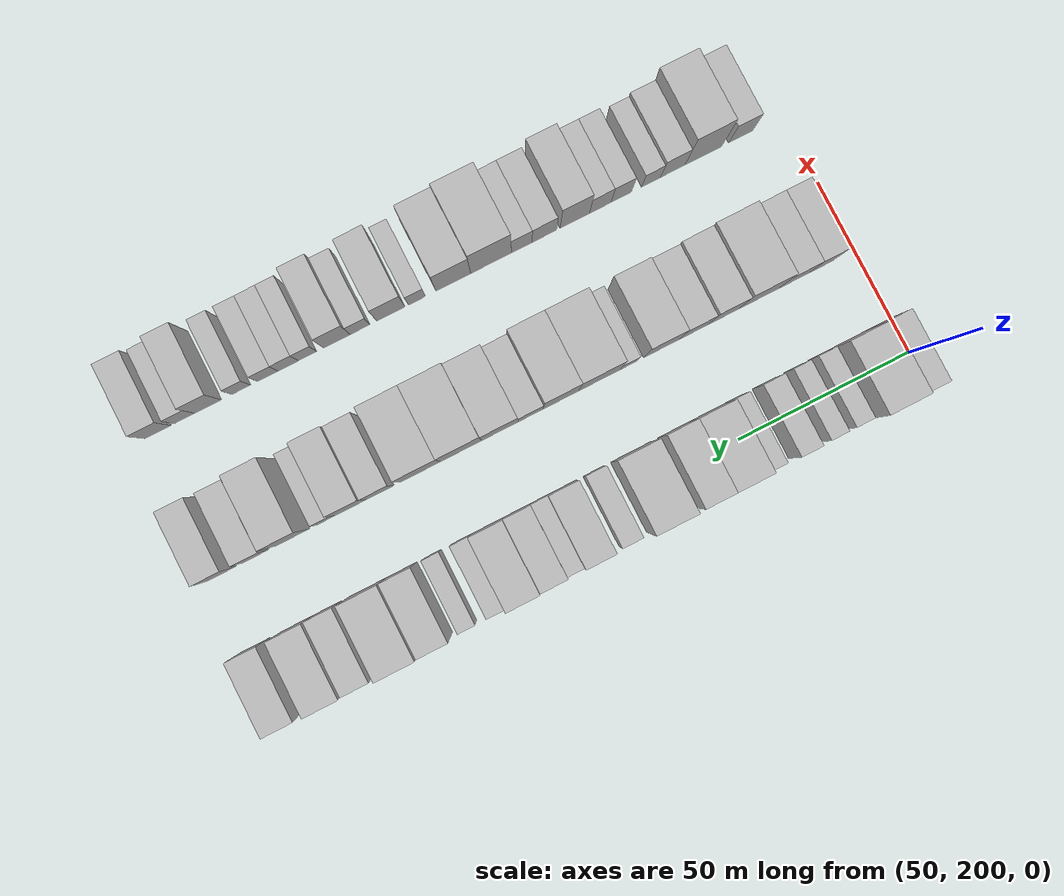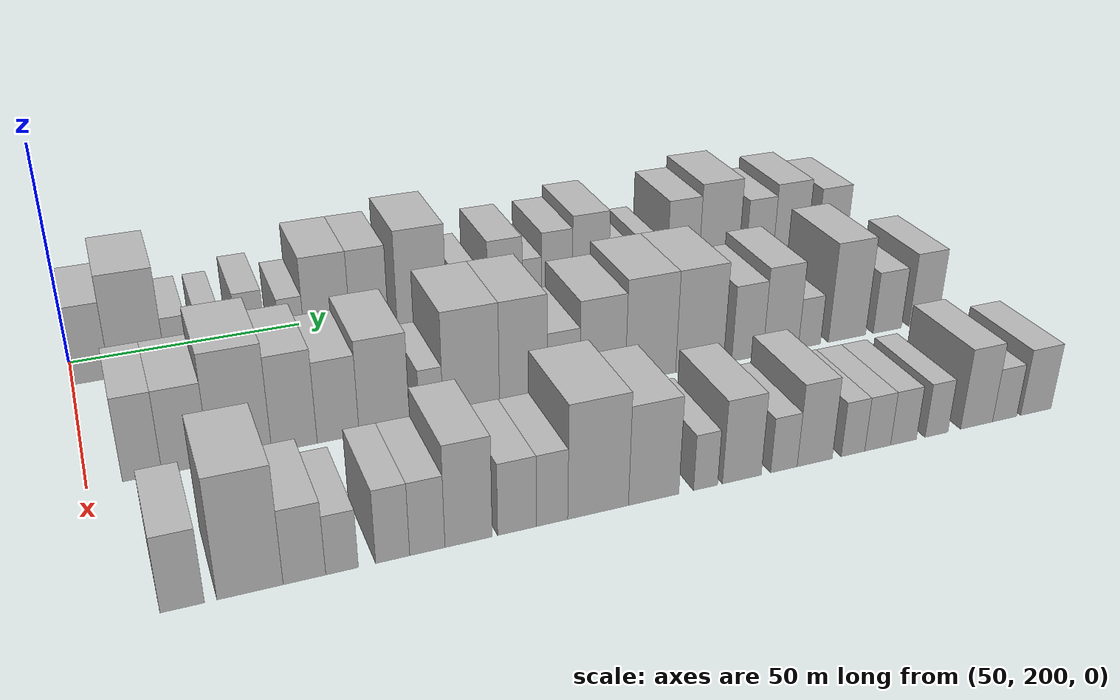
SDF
<sdf version="1.6">
 <world name="default">
  <model name="building_67">
   <static>1</static>
   <pose>50.0000 203.9074 0 0.000000 0.000000 0.000000</pose>
   <link name="link">
    <pose>0 0 9.00 0 0 0</pose>
    <collision name="collision"><geometry><box><size>20.0000 7.4606 18.0000</size></box></geometry></collision>
    <visual name="visual">
     <cast_shadows>0</cast_shadows>
     <geometry><box><size>20.0000 7.4606 18.0000</size></box></geometry>
     <material>
      <script>
       <uri>model://HANNAS_wall/materials/scripts</uri>
       <uri>model://HANNAS_wall/materials/textures</uri>
       <name>vrc/HANNAS_wall</name>
      </script>
     </material>
    </visual>
   </link>
  </model>
  <model name="building_68">
   <static>1</static>
   <pose>50.0000 213.4400 0 0.000000 0.000000 0.000000</pose>
   <link name="link">
    <pose>0 0 12.00 0 0 0</pose>
    <collision name="collision"><geometry><box><size>20.0000 11.6046 24.0000</size></box></geometry></collision>
    <visual name="visual">
     <cast_shadows>0</cast_shadows>
     <geometry><box><size>20.0000 11.6046 24.0000</size></box></geometry>
     <material>
      <script>
       <uri>model://HANNAS_wall/materials/scripts</uri>
       <uri>model://HANNAS_wall/materials/textures</uri>
       <name>vrc/HANNAS_wall</name>
      </script>
     </material>
    </visual>
   </link>
  </model>
  <model name="building_69">
   <static>1</static>
   <pose>50.0000 221.8790 0 0.000000 0.000000 0.000000</pose>
   <link name="link">
    <pose>0 0 6.00 0 0 0</pose>
    <collision name="collision"><geometry><box><size>20.0000 5.2733 12.0000</size></box></geometry></collision>
    <visual name="visual">
     <cast_shadows>0</cast_shadows>
     <geometry><box><size>20.0000 5.2733 12.0000</size></box></geometry>
     <material>
      <script>
       <uri>model://HANNAS_wall/materials/scripts</uri>
       <uri>model://HANNAS_wall/materials/textures</uri>
       <name>vrc/HANNAS_wall</name>
      </script>
     </material>
    </visual>
   </link>
  </model>
  <model name="building_70">
   <static>1</static>
   <pose>50.0000 229.0565 0 0.000000 0.000000 0.000000</pose>
   <link name="link">
    <pose>0 0 6.00 0 0 0</pose>
    <collision name="collision"><geometry><box><size>20.0000 5.0818 12.0000</size></box></geometry></collision>
    <visual name="visual">
     <cast_shadows>0</cast_shadows>
     <geometry><box><size>20.0000 5.0818 12.0000</size></box></geometry>
     <material>
      <script>
       <uri>model://HANNAS_wall/materials/scripts</uri>
       <uri>model://HANNAS_wall/materials/textures</uri>
       <name>vrc/HANNAS_wall</name>
      </script>
     </material>
    </visual>
   </link>
  </model>
  <model name="building_71">
   <static>1</static>
   <pose>50.0000 237.6890 0 0.000000 0.000000 0.000000</pose>
   <link name="link">
    <pose>0 0 7.50 0 0 0</pose>
    <collision name="collision"><geometry><box><size>20.0000 6.1831 15.0000</size></box></geometry></collision>
    <visual name="visual">
     <cast_shadows>0</cast_shadows>
     <geometry><box><size>20.0000 6.1831 15.0000</size></box></geometry>
     <material>
      <script>
       <uri>model://HANNAS_wall/materials/scripts</uri>
       <uri>model://HANNAS_wall/materials/textures</uri>
       <name>vrc/HANNAS_wall</name>
      </script>
     </material>
    </visual>
   </link>
  </model>
  <model name="building_72">
   <static>1</static>
   <pose>50.0000 246.5263 0 0.000000 0.000000 0.000000</pose>
   <link name="link">
    <pose>0 0 6.00 0 0 0</pose>
    <collision name="collision"><geometry><box><size>20.0000 5.4916 12.0000</size></box></geometry></collision>
    <visual name="visual">
     <cast_shadows>0</cast_shadows>
     <geometry><box><size>20.0000 5.4916 12.0000</size></box></geometry>
     <material>
      <script>
       <uri>model://HANNAS_wall/materials/scripts</uri>
       <uri>model://HANNAS_wall/materials/textures</uri>
       <name>vrc/HANNAS_wall</name>
      </script>
     </material>
    </visual>
   </link>
  </model>
  <model name="building_73">
   <static>1</static>
   <pose>50.0000 254.4326 0 0.000000 0.000000 0.000000</pose>
   <link name="link">
    <pose>0 0 10.50 0 0 0</pose>
    <collision name="collision"><geometry><box><size>20.0000 10.3210 21.0000</size></box></geometry></collision>
    <visual name="visual">
     <cast_shadows>0</cast_shadows>
     <geometry><box><size>20.0000 10.3210 21.0000</size></box></geometry>
     <material>
      <script>
       <uri>model://HANNAS_wall/materials/scripts</uri>
       <uri>model://HANNAS_wall/materials/textures</uri>
       <name>vrc/HANNAS_wall</name>
      </script>
     </material>
    </visual>
   </link>
  </model>
  <model name="building_74">
   <static>1</static>
   <pose>50.0000 263.9649 0 0.000000 0.000000 0.000000</pose>
   <link name="link">
    <pose>0 0 10.50 0 0 0</pose>
    <collision name="collision"><geometry><box><size>20.0000 8.7438 21.0000</size></box></geometry></collision>
    <visual name="visual">
     <cast_shadows>0</cast_shadows>
     <geometry><box><size>20.0000 8.7438 21.0000</size></box></geometry>
     <material>
      <script>
       <uri>model://HANNAS_wall/materials/scripts</uri>
       <uri>model://HANNAS_wall/materials/textures</uri>
       <name>vrc/HANNAS_wall</name>
      </script>
     </material>
    </visual>
   </link>
  </model>
  <model name="building_75">
   <static>1</static>
   <pose>50.0000 276.1647 0 0.000000 0.000000 0.000000</pose>
   <link name="link">
    <pose>0 0 12.00 0 0 0</pose>
    <collision name="collision"><geometry><box><size>20.0000 11.6556 24.0000</size></box></geometry></collision>
    <visual name="visual">
     <cast_shadows>0</cast_shadows>
     <geometry><box><size>20.0000 11.6556 24.0000</size></box></geometry>
     <material>
      <script>
       <uri>model://HANNAS_wall/materials/scripts</uri>
       <uri>model://HANNAS_wall/materials/textures</uri>
       <name>vrc/HANNAS_wall</name>
      </script>
     </material>
    </visual>
   </link>
  </model>
  <model name="building_76">
   <static>1</static>
   <pose>50.0000 286.9601 0 0.000000 0.000000 0.000000</pose>
   <link name="link">
    <pose>0 0 6.00 0 0 0</pose>
    <collision name="collision"><geometry><box><size>20.0000 5.9353 12.0000</size></box></geometry></collision>
    <visual name="visual">
     <cast_shadows>0</cast_shadows>
     <geometry><box><size>20.0000 5.9353 12.0000</size></box></geometry>
     <material>
      <script>
       <uri>model://HANNAS_wall/materials/scripts</uri>
       <uri>model://HANNAS_wall/materials/textures</uri>
       <name>vrc/HANNAS_wall</name>
      </script>
     </material>
    </visual>
   </link>
  </model>
  <model name="building_77">
   <static>1</static>
   <pose>50.0000 296.1823 0 0.000000 0.000000 0.000000</pose>
   <link name="link">
    <pose>0 0 9.00 0 0 0</pose>
    <collision name="collision"><geometry><box><size>20.0000 8.5092 18.0000</size></box></geometry></collision>
    <visual name="visual">
     <cast_shadows>0</cast_shadows>
     <geometry><box><size>20.0000 8.5092 18.0000</size></box></geometry>
     <material>
      <script>
       <uri>model://HANNAS_wall/materials/scripts</uri>
       <uri>model://HANNAS_wall/materials/textures</uri>
       <name>vrc/HANNAS_wall</name>
      </script>
     </material>
    </visual>
   </link>
  </model>
  <model name="building_78">
   <static>1</static>
   <pose>50.0000 302.8393 0 0.000000 0.000000 0.000000</pose>
   <link name="link">
    <pose>0 0 6.00 0 0 0</pose>
    <collision name="collision"><geometry><box><size>20.0000 4.8047 12.0000</size></box></geometry></collision>
    <visual name="visual">
     <cast_shadows>0</cast_shadows>
     <geometry><box><size>20.0000 4.8047 12.0000</size></box></geometry>
     <material>
      <script>
       <uri>model://HANNAS_wall/materials/scripts</uri>
       <uri>model://HANNAS_wall/materials/textures</uri>
       <name>vrc/HANNAS_wall</name>
      </script>
     </material>
    </visual>
   </link>
  </model>
  <model name="building_79">
   <static>1</static>
   <pose>50.0000 309.0741 0 0.000000 0.000000 0.000000</pose>
   <link name="link">
    <pose>0 0 9.00 0 0 0</pose>
    <collision name="collision"><geometry><box><size>20.0000 7.6651 18.0000</size></box></geometry></collision>
    <visual name="visual">
     <cast_shadows>0</cast_shadows>
     <geometry><box><size>20.0000 7.6651 18.0000</size></box></geometry>
     <material>
      <script>
       <uri>model://HANNAS_wall/materials/scripts</uri>
       <uri>model://HANNAS_wall/materials/textures</uri>
       <name>vrc/HANNAS_wall</name>
      </script>
     </material>
    </visual>
   </link>
  </model>
  <model name="building_80">
   <static>1</static>
   <pose>50.0000 317.5751 0 0.000000 0.000000 0.000000</pose>
   <link name="link">
    <pose>0 0 10.50 0 0 0</pose>
    <collision name="collision"><geometry><box><size>20.0000 9.3370 21.0000</size></box></geometry></collision>
    <visual name="visual">
     <cast_shadows>0</cast_shadows>
     <geometry><box><size>20.0000 9.3370 21.0000</size></box></geometry>
     <material>
      <script>
       <uri>model://HANNAS_wall/materials/scripts</uri>
       <uri>model://HANNAS_wall/materials/textures</uri>
       <name>vrc/HANNAS_wall</name>
      </script>
     </material>
    </visual>
   </link>
  </model>
  <model name="building_81">
   <static>1</static>
   <pose>50.0000 324.9460 0 0.000000 0.000000 0.000000</pose>
   <link name="link">
    <pose>0 0 6.00 0 0 0</pose>
    <collision name="collision"><geometry><box><size>20.0000 5.4047 12.0000</size></box></geometry></collision>
    <visual name="visual">
     <cast_shadows>0</cast_shadows>
     <geometry><box><size>20.0000 5.4047 12.0000</size></box></geometry>
     <material>
      <script>
       <uri>model://HANNAS_wall/materials/scripts</uri>
       <uri>model://HANNAS_wall/materials/textures</uri>
       <name>vrc/HANNAS_wall</name>
      </script>
     </material>
    </visual>
   </link>
  </model>
  <model name="building_82">
   <static>1</static>
   <pose>50.0000 333.0898 0 0.000000 0.000000 0.000000</pose>
   <link name="link">
    <pose>0 0 6.00 0 0 0</pose>
    <collision name="collision"><geometry><box><size>20.0000 4.8829 12.0000</size></box></geometry></collision>
    <visual name="visual">
     <cast_shadows>0</cast_shadows>
     <geometry><box><size>20.0000 4.8829 12.0000</size></box></geometry>
     <material>
      <script>
       <uri>model://HANNAS_wall/materials/scripts</uri>
       <uri>model://HANNAS_wall/materials/textures</uri>
       <name>vrc/HANNAS_wall</name>
      </script>
     </material>
    </visual>
   </link>
  </model>
  <model name="building_83">
   <static>1</static>
   <pose>50.0000 341.8164 0 0.000000 0.000000 0.000000</pose>
   <link name="link">
    <pose>0 0 10.50 0 0 0</pose>
    <collision name="collision"><geometry><box><size>20.0000 8.5703 21.0000</size></box></geometry></collision>
    <visual name="visual">
     <cast_shadows>0</cast_shadows>
     <geometry><box><size>20.0000 8.5703 21.0000</size></box></geometry>
     <material>
      <script>
       <uri>model://HANNAS_wall/materials/scripts</uri>
       <uri>model://HANNAS_wall/materials/textures</uri>
       <name>vrc/HANNAS_wall</name>
      </script>
     </material>
    </visual>
   </link>
  </model>
  <model name="building_84">
   <static>1</static>
   <pose>50.0000 351.5468 0 0.000000 0.000000 0.000000</pose>
   <link name="link">
    <pose>0 0 12.00 0 0 0</pose>
    <collision name="collision"><geometry><box><size>20.0000 10.8905 24.0000</size></box></geometry></collision>
    <visual name="visual">
     <cast_shadows>0</cast_shadows>
     <geometry><box><size>20.0000 10.8905 24.0000</size></box></geometry>
     <material>
      <script>
       <uri>model://HANNAS_wall/materials/scripts</uri>
       <uri>model://HANNAS_wall/materials/textures</uri>
       <name>vrc/HANNAS_wall</name>
      </script>
     </material>
    </visual>
   </link>
  </model>
  <model name="building_85">
   <static>1</static>
   <pose>50.0000 362.8300 0 0.000000 0.000000 0.000000</pose>
   <link name="link">
    <pose>0 0 9.00 0 0 0</pose>
    <collision name="collision"><geometry><box><size>20.0000 7.6759 18.0000</size></box></geometry></collision>
    <visual name="visual">
     <cast_shadows>0</cast_shadows>
     <geometry><box><size>20.0000 7.6759 18.0000</size></box></geometry>
     <material>
      <script>
       <uri>model://HANNAS_wall/materials/scripts</uri>
       <uri>model://HANNAS_wall/materials/textures</uri>
       <name>vrc/HANNAS_wall</name>
      </script>
     </material>
    </visual>
   </link>
  </model>
  <model name="building_86">
   <static>1</static>
   <pose>50.0000 371.4643 0 0.000000 0.000000 0.000000</pose>
   <link name="link">
    <pose>0 0 10.50 0 0 0</pose>
    <collision name="collision"><geometry><box><size>20.0000 9.5929 21.0000</size></box></geometry></collision>
    <visual name="visual">
     <cast_shadows>0</cast_shadows>
     <geometry><box><size>20.0000 9.5929 21.0000</size></box></geometry>
     <material>
      <script>
       <uri>model://HANNAS_wall/materials/scripts</uri>
       <uri>model://HANNAS_wall/materials/textures</uri>
       <name>vrc/HANNAS_wall</name>
      </script>
     </material>
    </visual>
   </link>
  </model>
  <model name="building_87">
   <static>1</static>
   <pose>50.0000 383.5423 0 0.000000 0.000000 0.000000</pose>
   <link name="link">
    <pose>0 0 9.00 0 0 0</pose>
    <collision name="collision"><geometry><box><size>20.0000 8.5631 18.0000</size></box></geometry></collision>
    <visual name="visual">
     <cast_shadows>0</cast_shadows>
     <geometry><box><size>20.0000 8.5631 18.0000</size></box></geometry>
     <material>
      <script>
       <uri>model://HANNAS_wall/materials/scripts</uri>
       <uri>model://HANNAS_wall/materials/textures</uri>
       <name>vrc/HANNAS_wall</name>
      </script>
     </material>
    </visual>
   </link>
  </model>
  <model name="building_145">
   <static>1</static>
   <pose>90.0000 210.1592 0 0.000000 0.000000 0.000000</pose>
   <link name="link">
    <pose>0 0 9.00 0 0 0</pose>
    <collision name="collision"><geometry><box><size>20.0000 7.2227 18.0000</size></box></geometry></collision>
    <visual name="visual">
     <cast_shadows>0</cast_shadows>
     <geometry><box><size>20.0000 7.2227 18.0000</size></box></geometry>
     <material>
      <script>
       <uri>model://HANNAS_wall/materials/scripts</uri>
       <uri>model://HANNAS_wall/materials/textures</uri>
       <name>vrc/HANNAS_wall</name>
      </script>
     </material>
    </visual>
   </link>
  </model>
  <model name="building_146">
   <static>1</static>
   <pose>90.0000 218.2079 0 0.000000 0.000000 0.000000</pose>
   <link name="link">
    <pose>0 0 9.00 0 0 0</pose>
    <collision name="collision"><geometry><box><size>20.0000 8.8747 18.0000</size></box></geometry></collision>
    <visual name="visual">
     <cast_shadows>0</cast_shadows>
     <geometry><box><size>20.0000 8.8747 18.0000</size></box></geometry>
     <material>
      <script>
       <uri>model://HANNAS_wall/materials/scripts</uri>
       <uri>model://HANNAS_wall/materials/textures</uri>
       <name>vrc/HANNAS_wall</name>
      </script>
     </material>
    </visual>
   </link>
  </model>
  <model name="building_147">
   <static>1</static>
   <pose>90.0000 228.5330 0 0.000000 0.000000 0.000000</pose>
   <link name="link">
    <pose>0 0 12.00 0 0 0</pose>
    <collision name="collision"><geometry><box><size>20.0000 11.7755 24.0000</size></box></geometry></collision>
    <visual name="visual">
     <cast_shadows>0</cast_shadows>
     <geometry><box><size>20.0000 11.7755 24.0000</size></box></geometry>
     <material>
      <script>
       <uri>model://HANNAS_wall/materials/scripts</uri>
       <uri>model://HANNAS_wall/materials/textures</uri>
       <name>vrc/HANNAS_wall</name>
      </script>
     </material>
    </visual>
   </link>
  </model>
  <model name="building_148">
   <static>1</static>
   <pose>90.0000 238.8529 0 0.000000 0.000000 0.000000</pose>
   <link name="link">
    <pose>0 0 10.50 0 0 0</pose>
    <collision name="collision"><geometry><box><size>20.0000 8.8641 21.0000</size></box></geometry></collision>
    <visual name="visual">
     <cast_shadows>0</cast_shadows>
     <geometry><box><size>20.0000 8.8641 21.0000</size></box></geometry>
     <material>
      <script>
       <uri>model://HANNAS_wall/materials/scripts</uri>
       <uri>model://HANNAS_wall/materials/textures</uri>
       <name>vrc/HANNAS_wall</name>
      </script>
     </material>
    </visual>
   </link>
  </model>
  <model name="building_149">
   <static>1</static>
   <pose>90.0000 247.4682 0 0.000000 0.000000 0.000000</pose>
   <link name="link">
    <pose>0 0 9.00 0 0 0</pose>
    <collision name="collision"><geometry><box><size>20.0000 8.3666 18.0000</size></box></geometry></collision>
    <visual name="visual">
     <cast_shadows>0</cast_shadows>
     <geometry><box><size>20.0000 8.3666 18.0000</size></box></geometry>
     <material>
      <script>
       <uri>model://HANNAS_wall/materials/scripts</uri>
       <uri>model://HANNAS_wall/materials/textures</uri>
       <name>vrc/HANNAS_wall</name>
      </script>
     </material>
    </visual>
   </link>
  </model>
  <model name="building_150">
   <static>1</static>
   <pose>90.0000 256.7922 0 0.000000 0.000000 0.000000</pose>
   <link name="link">
    <pose>0 0 10.50 0 0 0</pose>
    <collision name="collision"><geometry><box><size>20.0000 10.2814 21.0000</size></box></geometry></collision>
    <visual name="visual">
     <cast_shadows>0</cast_shadows>
     <geometry><box><size>20.0000 10.2814 21.0000</size></box></geometry>
     <material>
      <script>
       <uri>model://HANNAS_wall/materials/scripts</uri>
       <uri>model://HANNAS_wall/materials/textures</uri>
       <name>vrc/HANNAS_wall</name>
      </script>
     </material>
    </visual>
   </link>
  </model>
  <model name="building_151">
   <static>1</static>
   <pose>90.0000 266.4143 0 0.000000 0.000000 0.000000</pose>
   <link name="link">
    <pose>0 0 6.00 0 0 0</pose>
    <collision name="collision"><geometry><box><size>20.0000 4.9627 12.0000</size></box></geometry></collision>
    <visual name="visual">
     <cast_shadows>0</cast_shadows>
     <geometry><box><size>20.0000 4.9627 12.0000</size></box></geometry>
     <material>
      <script>
       <uri>model://HANNAS_wall/materials/scripts</uri>
       <uri>model://HANNAS_wall/materials/textures</uri>
       <name>vrc/HANNAS_wall</name>
      </script>
     </material>
    </visual>
   </link>
  </model>
  <model name="building_152">
   <static>1</static>
   <pose>90.0000 274.8888 0 0.000000 0.000000 0.000000</pose>
   <link name="link">
    <pose>0 0 12.00 0 0 0</pose>
    <collision name="collision"><geometry><box><size>20.0000 11.9864 24.0000</size></box></geometry></collision>
    <visual name="visual">
     <cast_shadows>0</cast_shadows>
     <geometry><box><size>20.0000 11.9864 24.0000</size></box></geometry>
     <material>
      <script>
       <uri>model://HANNAS_wall/materials/scripts</uri>
       <uri>model://HANNAS_wall/materials/textures</uri>
       <name>vrc/HANNAS_wall</name>
      </script>
     </material>
    </visual>
   </link>
  </model>
  <model name="building_153">
   <static>1</static>
   <pose>90.0000 286.0434 0 0.000000 0.000000 0.000000</pose>
   <link name="link">
    <pose>0 0 12.00 0 0 0</pose>
    <collision name="collision"><geometry><box><size>20.0000 10.3229 24.0000</size></box></geometry></collision>
    <visual name="visual">
     <cast_shadows>0</cast_shadows>
     <geometry><box><size>20.0000 10.3229 24.0000</size></box></geometry>
     <material>
      <script>
       <uri>model://HANNAS_wall/materials/scripts</uri>
       <uri>model://HANNAS_wall/materials/textures</uri>
       <name>vrc/HANNAS_wall</name>
      </script>
     </material>
    </visual>
   </link>
  </model>
  <model name="building_154">
   <static>1</static>
   <pose>90.0000 294.8278 0 0.000000 0.000000 0.000000</pose>
   <link name="link">
    <pose>0 0 7.50 0 0 0</pose>
    <collision name="collision"><geometry><box><size>20.0000 7.2458 15.0000</size></box></geometry></collision>
    <visual name="visual">
     <cast_shadows>0</cast_shadows>
     <geometry><box><size>20.0000 7.2458 15.0000</size></box></geometry>
     <material>
      <script>
       <uri>model://HANNAS_wall/materials/scripts</uri>
       <uri>model://HANNAS_wall/materials/textures</uri>
       <name>vrc/HANNAS_wall</name>
      </script>
     </material>
    </visual>
   </link>
  </model>
  <model name="building_155">
   <static>1</static>
   <pose>90.0000 303.6382 0 0.000000 0.000000 0.000000</pose>
   <link name="link">
    <pose>0 0 10.50 0 0 0</pose>
    <collision name="collision"><geometry><box><size>20.0000 10.3751 21.0000</size></box></geometry></collision>
    <visual name="visual">
     <cast_shadows>0</cast_shadows>
     <geometry><box><size>20.0000 10.3751 21.0000</size></box></geometry>
     <material>
      <script>
       <uri>model://HANNAS_wall/materials/scripts</uri>
       <uri>model://HANNAS_wall/materials/textures</uri>
       <name>vrc/HANNAS_wall</name>
      </script>
     </material>
    </visual>
   </link>
  </model>
  <model name="building_156">
   <static>1</static>
   <pose>90.0000 314.6984 0 0.000000 0.000000 0.000000</pose>
   <link name="link">
    <pose>0 0 12.00 0 0 0</pose>
    <collision name="collision"><geometry><box><size>20.0000 11.7453 24.0000</size></box></geometry></collision>
    <visual name="visual">
     <cast_shadows>0</cast_shadows>
     <geometry><box><size>20.0000 11.7453 24.0000</size></box></geometry>
     <material>
      <script>
       <uri>model://HANNAS_wall/materials/scripts</uri>
       <uri>model://HANNAS_wall/materials/textures</uri>
       <name>vrc/HANNAS_wall</name>
      </script>
     </material>
    </visual>
   </link>
  </model>
  <model name="building_157">
   <static>1</static>
   <pose>90.0000 326.2938 0 0.000000 0.000000 0.000000</pose>
   <link name="link">
    <pose>0 0 12.00 0 0 0</pose>
    <collision name="collision"><geometry><box><size>20.0000 11.4455 24.0000</size></box></geometry></collision>
    <visual name="visual">
     <cast_shadows>0</cast_shadows>
     <geometry><box><size>20.0000 11.4455 24.0000</size></box></geometry>
     <material>
      <script>
       <uri>model://HANNAS_wall/materials/scripts</uri>
       <uri>model://HANNAS_wall/materials/textures</uri>
       <name>vrc/HANNAS_wall</name>
      </script>
     </material>
    </visual>
   </link>
  </model>
  <model name="building_158">
   <static>1</static>
   <pose>90.0000 337.8491 0 0.000000 0.000000 0.000000</pose>
   <link name="link">
    <pose>0 0 9.00 0 0 0</pose>
    <collision name="collision"><geometry><box><size>20.0000 7.6651 18.0000</size></box></geometry></collision>
    <visual name="visual">
     <cast_shadows>0</cast_shadows>
     <geometry><box><size>20.0000 7.6651 18.0000</size></box></geometry>
     <material>
      <script>
       <uri>model://HANNAS_wall/materials/scripts</uri>
       <uri>model://HANNAS_wall/materials/textures</uri>
       <name>vrc/HANNAS_wall</name>
      </script>
     </material>
    </visual>
   </link>
  </model>
  <model name="building_159">
   <static>1</static>
   <pose>90.0000 346.0891 0 0.000000 0.000000 0.000000</pose>
   <link name="link">
    <pose>0 0 10.50 0 0 0</pose>
    <collision name="collision"><geometry><box><size>20.0000 8.8147 21.0000</size></box></geometry></collision>
    <visual name="visual">
     <cast_shadows>0</cast_shadows>
     <geometry><box><size>20.0000 8.8147 21.0000</size></box></geometry>
     <material>
      <script>
       <uri>model://HANNAS_wall/materials/scripts</uri>
       <uri>model://HANNAS_wall/materials/textures</uri>
       <name>vrc/HANNAS_wall</name>
      </script>
     </material>
    </visual>
   </link>
  </model>
  <model name="building_160">
   <static>1</static>
   <pose>90.0000 353.2990 0 0.000000 0.000000 0.000000</pose>
   <link name="link">
    <pose>0 0 6.00 0 0 0</pose>
    <collision name="collision"><geometry><box><size>20.0000 5.6052 12.0000</size></box></geometry></collision>
    <visual name="visual">
     <cast_shadows>0</cast_shadows>
     <geometry><box><size>20.0000 5.6052 12.0000</size></box></geometry>
     <material>
      <script>
       <uri>model://HANNAS_wall/materials/scripts</uri>
       <uri>model://HANNAS_wall/materials/textures</uri>
       <name>vrc/HANNAS_wall</name>
      </script>
     </material>
    </visual>
   </link>
  </model>
  <model name="building_161">
   <static>1</static>
   <pose>90.0000 362.9202 0 0.000000 0.000000 0.000000</pose>
   <link name="link">
    <pose>0 0 12.00 0 0 0</pose>
    <collision name="collision"><geometry><box><size>20.0000 9.6371 24.0000</size></box></geometry></collision>
    <visual name="visual">
     <cast_shadows>0</cast_shadows>
     <geometry><box><size>20.0000 9.6371 24.0000</size></box></geometry>
     <material>
      <script>
       <uri>model://HANNAS_wall/materials/scripts</uri>
       <uri>model://HANNAS_wall/materials/textures</uri>
       <name>vrc/HANNAS_wall</name>
      </script>
     </material>
    </visual>
   </link>
  </model>
  <model name="building_162">
   <static>1</static>
   <pose>90.0000 373.4535 0 0.000000 0.000000 0.000000</pose>
   <link name="link">
    <pose>0 0 7.50 0 0 0</pose>
    <collision name="collision"><geometry><box><size>20.0000 7.4295 15.0000</size></box></geometry></collision>
    <visual name="visual">
     <cast_shadows>0</cast_shadows>
     <geometry><box><size>20.0000 7.4295 15.0000</size></box></geometry>
     <material>
      <script>
       <uri>model://HANNAS_wall/materials/scripts</uri>
       <uri>model://HANNAS_wall/materials/textures</uri>
       <name>vrc/HANNAS_wall</name>
      </script>
     </material>
    </visual>
   </link>
  </model>
  <model name="building_163">
   <static>1</static>
   <pose>90.0000 383.1153 0 0.000000 0.000000 0.000000</pose>
   <link name="link">
    <pose>0 0 9.00 0 0 0</pose>
    <collision name="collision"><geometry><box><size>20.0000 7.8941 18.0000</size></box></geometry></collision>
    <visual name="visual">
     <cast_shadows>0</cast_shadows>
     <geometry><box><size>20.0000 7.8941 18.0000</size></box></geometry>
     <material>
      <script>
       <uri>model://HANNAS_wall/materials/scripts</uri>
       <uri>model://HANNAS_wall/materials/textures</uri>
       <name>vrc/HANNAS_wall</name>
      </script>
     </material>
    </visual>
   </link>
  </model>
  <model name="building_227">
   <static>1</static>
   <pose>130.0000 212.3533 0 0.000000 0.000000 0.000000</pose>
   <link name="link">
    <pose>0 0 7.50 0 0 0</pose>
    <collision name="collision"><geometry><box><size>20.0000 7.1189 15.0000</size></box></geometry></collision>
    <visual name="visual">
     <cast_shadows>0</cast_shadows>
     <geometry><box><size>20.0000 7.1189 15.0000</size></box></geometry>
     <material>
      <script>
       <uri>model://HANNAS_wall/materials/scripts</uri>
       <uri>model://HANNAS_wall/materials/textures</uri>
       <name>vrc/HANNAS_wall</name>
      </script>
     </material>
    </visual>
   </link>
  </model>
  <model name="building_228">
   <static>1</static>
   <pose>130.0000 223.3731 0 0.000000 0.000000 0.000000</pose>
   <link name="link">
    <pose>0 0 12.00 0 0 0</pose>
    <collision name="collision"><geometry><box><size>20.0000 10.9208 24.0000</size></box></geometry></collision>
    <visual name="visual">
     <cast_shadows>0</cast_shadows>
     <geometry><box><size>20.0000 10.9208 24.0000</size></box></geometry>
     <material>
      <script>
       <uri>model://HANNAS_wall/materials/scripts</uri>
       <uri>model://HANNAS_wall/materials/textures</uri>
       <name>vrc/HANNAS_wall</name>
      </script>
     </material>
    </visual>
   </link>
  </model>
  <model name="building_229">
   <static>1</static>
   <pose>130.0000 232.4304 0 0.000000 0.000000 0.000000</pose>
   <link name="link">
    <pose>0 0 7.50 0 0 0</pose>
    <collision name="collision"><geometry><box><size>20.0000 7.1937 15.0000</size></box></geometry></collision>
    <visual name="visual">
     <cast_shadows>0</cast_shadows>
     <geometry><box><size>20.0000 7.1937 15.0000</size></box></geometry>
     <material>
      <script>
       <uri>model://HANNAS_wall/materials/scripts</uri>
       <uri>model://HANNAS_wall/materials/textures</uri>
       <name>vrc/HANNAS_wall</name>
      </script>
     </material>
    </visual>
   </link>
  </model>
  <model name="building_230">
   <static>1</static>
   <pose>130.0000 238.8301 0 0.000000 0.000000 0.000000</pose>
   <link name="link">
    <pose>0 0 6.00 0 0 0</pose>
    <collision name="collision"><geometry><box><size>20.0000 5.6058 12.0000</size></box></geometry></collision>
    <visual name="visual">
     <cast_shadows>0</cast_shadows>
     <geometry><box><size>20.0000 5.6058 12.0000</size></box></geometry>
     <material>
      <script>
       <uri>model://HANNAS_wall/materials/scripts</uri>
       <uri>model://HANNAS_wall/materials/textures</uri>
       <name>vrc/HANNAS_wall</name>
      </script>
     </material>
    </visual>
   </link>
  </model>
  <model name="building_231">
   <static>1</static>
   <pose>130.0000 247.6378 0 0.000000 0.000000 0.000000</pose>
   <link name="link">
    <pose>0 0 7.50 0 0 0</pose>
    <collision name="collision"><geometry><box><size>20.0000 6.0096 15.0000</size></box></geometry></collision>
    <visual name="visual">
     <cast_shadows>0</cast_shadows>
     <geometry><box><size>20.0000 6.0096 15.0000</size></box></geometry>
     <material>
      <script>
       <uri>model://HANNAS_wall/materials/scripts</uri>
       <uri>model://HANNAS_wall/materials/textures</uri>
       <name>vrc/HANNAS_wall</name>
      </script>
     </material>
    </visual>
   </link>
  </model>
  <model name="building_232">
   <static>1</static>
   <pose>130.0000 253.8000 0 0.000000 0.000000 0.000000</pose>
   <link name="link">
    <pose>0 0 7.50 0 0 0</pose>
    <collision name="collision"><geometry><box><size>20.0000 6.3146 15.0000</size></box></geometry></collision>
    <visual name="visual">
     <cast_shadows>0</cast_shadows>
     <geometry><box><size>20.0000 6.3146 15.0000</size></box></geometry>
     <material>
      <script>
       <uri>model://HANNAS_wall/materials/scripts</uri>
       <uri>model://HANNAS_wall/materials/textures</uri>
       <name>vrc/HANNAS_wall</name>
      </script>
     </material>
    </visual>
   </link>
  </model>
  <model name="building_233">
   <static>1</static>
   <pose>130.0000 261.2801 0 0.000000 0.000000 0.000000</pose>
   <link name="link">
    <pose>0 0 10.50 0 0 0</pose>
    <collision name="collision"><geometry><box><size>20.0000 8.6458 21.0000</size></box></geometry></collision>
    <visual name="visual">
     <cast_shadows>0</cast_shadows>
     <geometry><box><size>20.0000 8.6458 21.0000</size></box></geometry>
     <material>
      <script>
       <uri>model://HANNAS_wall/materials/scripts</uri>
       <uri>model://HANNAS_wall/materials/textures</uri>
       <name>vrc/HANNAS_wall</name>
      </script>
     </material>
    </visual>
   </link>
  </model>
  <model name="building_234">
   <static>1</static>
   <pose>130.0000 270.2092 0 0.000000 0.000000 0.000000</pose>
   <link name="link">
    <pose>0 0 7.50 0 0 0</pose>
    <collision name="collision"><geometry><box><size>20.0000 7.2123 15.0000</size></box></geometry></collision>
    <visual name="visual">
     <cast_shadows>0</cast_shadows>
     <geometry><box><size>20.0000 7.2123 15.0000</size></box></geometry>
     <material>
      <script>
       <uri>model://HANNAS_wall/materials/scripts</uri>
       <uri>model://HANNAS_wall/materials/textures</uri>
       <name>vrc/HANNAS_wall</name>
      </script>
     </material>
    </visual>
   </link>
  </model>
  <model name="building_235">
   <static>1</static>
   <pose>130.0000 276.8209 0 0.000000 0.000000 0.000000</pose>
   <link name="link">
    <pose>0 0 7.50 0 0 0</pose>
    <collision name="collision"><geometry><box><size>20.0000 6.0110 15.0000</size></box></geometry></collision>
    <visual name="visual">
     <cast_shadows>0</cast_shadows>
     <geometry><box><size>20.0000 6.0110 15.0000</size></box></geometry>
     <material>
      <script>
       <uri>model://HANNAS_wall/materials/scripts</uri>
       <uri>model://HANNAS_wall/materials/textures</uri>
       <name>vrc/HANNAS_wall</name>
      </script>
     </material>
    </visual>
   </link>
  </model>
  <model name="building_236">
   <static>1</static>
   <pose>130.0000 285.7589 0 0.000000 0.000000 0.000000</pose>
   <link name="link">
    <pose>0 0 12.00 0 0 0</pose>
    <collision name="collision"><geometry><box><size>20.0000 11.8651 24.0000</size></box></geometry></collision>
    <visual name="visual">
     <cast_shadows>0</cast_shadows>
     <geometry><box><size>20.0000 11.8651 24.0000</size></box></geometry>
     <material>
      <script>
       <uri>model://HANNAS_wall/materials/scripts</uri>
       <uri>model://HANNAS_wall/materials/textures</uri>
       <name>vrc/HANNAS_wall</name>
      </script>
     </material>
    </visual>
   </link>
  </model>
  <model name="building_237">
   <static>1</static>
   <pose>130.0000 296.7446 0 0.000000 0.000000 0.000000</pose>
   <link name="link">
    <pose>0 0 10.50 0 0 0</pose>
    <collision name="collision"><geometry><box><size>20.0000 10.1062 21.0000</size></box></geometry></collision>
    <visual name="visual">
     <cast_shadows>0</cast_shadows>
     <geometry><box><size>20.0000 10.1062 21.0000</size></box></geometry>
     <material>
      <script>
       <uri>model://HANNAS_wall/materials/scripts</uri>
       <uri>model://HANNAS_wall/materials/textures</uri>
       <name>vrc/HANNAS_wall</name>
      </script>
     </material>
    </visual>
   </link>
  </model>
  <model name="building_238">
   <static>1</static>
   <pose>130.0000 307.2864 0 0.000000 0.000000 0.000000</pose>
   <link name="link">
    <pose>0 0 6.00 0 0 0</pose>
    <collision name="collision"><geometry><box><size>20.0000 4.9774 12.0000</size></box></geometry></collision>
    <visual name="visual">
     <cast_shadows>0</cast_shadows>
     <geometry><box><size>20.0000 4.9774 12.0000</size></box></geometry>
     <material>
      <script>
       <uri>model://HANNAS_wall/materials/scripts</uri>
       <uri>model://HANNAS_wall/materials/textures</uri>
       <name>vrc/HANNAS_wall</name>
      </script>
     </material>
    </visual>
   </link>
  </model>
  <model name="building_239">
   <static>1</static>
   <pose>130.0000 314.8623 0 0.000000 0.000000 0.000000</pose>
   <link name="link">
    <pose>0 0 9.00 0 0 0</pose>
    <collision name="collision"><geometry><box><size>20.0000 8.1745 18.0000</size></box></geometry></collision>
    <visual name="visual">
     <cast_shadows>0</cast_shadows>
     <geometry><box><size>20.0000 8.1745 18.0000</size></box></geometry>
     <material>
      <script>
       <uri>model://HANNAS_wall/materials/scripts</uri>
       <uri>model://HANNAS_wall/materials/textures</uri>
       <name>vrc/HANNAS_wall</name>
      </script>
     </material>
    </visual>
   </link>
  </model>
  <model name="building_240">
   <static>1</static>
   <pose>130.0000 323.8049 0 0.000000 0.000000 0.000000</pose>
   <link name="link">
    <pose>0 0 6.00 0 0 0</pose>
    <collision name="collision"><geometry><box><size>20.0000 5.7107 12.0000</size></box></geometry></collision>
    <visual name="visual">
     <cast_shadows>0</cast_shadows>
     <geometry><box><size>20.0000 5.7107 12.0000</size></box></geometry>
     <material>
      <script>
       <uri>model://HANNAS_wall/materials/scripts</uri>
       <uri>model://HANNAS_wall/materials/textures</uri>
       <name>vrc/HANNAS_wall</name>
      </script>
     </material>
    </visual>
   </link>
  </model>
  <model name="building_241">
   <static>1</static>
   <pose>130.0000 330.4912 0 0.000000 0.000000 0.000000</pose>
   <link name="link">
    <pose>0 0 9.00 0 0 0</pose>
    <collision name="collision"><geometry><box><size>20.0000 7.6619 18.0000</size></box></geometry></collision>
    <visual name="visual">
     <cast_shadows>0</cast_shadows>
     <geometry><box><size>20.0000 7.6619 18.0000</size></box></geometry>
     <material>
      <script>
       <uri>model://HANNAS_wall/materials/scripts</uri>
       <uri>model://HANNAS_wall/materials/textures</uri>
       <name>vrc/HANNAS_wall</name>
      </script>
     </material>
    </visual>
   </link>
  </model>
  <model name="building_242">
   <static>1</static>
   <pose>130.0000 338.9549 0 0.000000 0.000000 0.000000</pose>
   <link name="link">
    <pose>0 0 6.00 0 0 0</pose>
    <collision name="collision"><geometry><box><size>20.0000 5.2655 12.0000</size></box></geometry></collision>
    <visual name="visual">
     <cast_shadows>0</cast_shadows>
     <geometry><box><size>20.0000 5.2655 12.0000</size></box></geometry>
     <material>
      <script>
       <uri>model://HANNAS_wall/materials/scripts</uri>
       <uri>model://HANNAS_wall/materials/textures</uri>
       <name>vrc/HANNAS_wall</name>
      </script>
     </material>
    </visual>
   </link>
  </model>
  <model name="building_243">
   <static>1</static>
   <pose>130.0000 344.5069 0 0.000000 0.000000 0.000000</pose>
   <link name="link">
    <pose>0 0 6.00 0 0 0</pose>
    <collision name="collision"><geometry><box><size>20.0000 5.8387 12.0000</size></box></geometry></collision>
    <visual name="visual">
     <cast_shadows>0</cast_shadows>
     <geometry><box><size>20.0000 5.8387 12.0000</size></box></geometry>
     <material>
      <script>
       <uri>model://HANNAS_wall/materials/scripts</uri>
       <uri>model://HANNAS_wall/materials/textures</uri>
       <name>vrc/HANNAS_wall</name>
      </script>
     </material>
    </visual>
   </link>
  </model>
  <model name="building_244">
   <static>1</static>
   <pose>130.0000 350.3891 0 0.000000 0.000000 0.000000</pose>
   <link name="link">
    <pose>0 0 6.00 0 0 0</pose>
    <collision name="collision"><geometry><box><size>20.0000 5.9256 12.0000</size></box></geometry></collision>
    <visual name="visual">
     <cast_shadows>0</cast_shadows>
     <geometry><box><size>20.0000 5.9256 12.0000</size></box></geometry>
     <material>
      <script>
       <uri>model://HANNAS_wall/materials/scripts</uri>
       <uri>model://HANNAS_wall/materials/textures</uri>
       <name>vrc/HANNAS_wall</name>
      </script>
     </material>
    </visual>
   </link>
  </model>
  <model name="building_245">
   <static>1</static>
   <pose>130.0000 358.0310 0 0.000000 0.000000 0.000000</pose>
   <link name="link">
    <pose>0 0 6.00 0 0 0</pose>
    <collision name="collision"><geometry><box><size>20.0000 5.3583 12.0000</size></box></geometry></collision>
    <visual name="visual">
     <cast_shadows>0</cast_shadows>
     <geometry><box><size>20.0000 5.3583 12.0000</size></box></geometry>
     <material>
      <script>
       <uri>model://HANNAS_wall/materials/scripts</uri>
       <uri>model://HANNAS_wall/materials/textures</uri>
       <name>vrc/HANNAS_wall</name>
      </script>
     </material>
    </visual>
   </link>
  </model>
  <model name="building_246">
   <static>1</static>
   <pose>130.0000 367.5364 0 0.000000 0.000000 0.000000</pose>
   <link name="link">
    <pose>0 0 9.00 0 0 0</pose>
    <collision name="collision"><geometry><box><size>20.0000 7.6525 18.0000</size></box></geometry></collision>
    <visual name="visual">
     <cast_shadows>0</cast_shadows>
     <geometry><box><size>20.0000 7.6525 18.0000</size></box></geometry>
     <material>
      <script>
       <uri>model://HANNAS_wall/materials/scripts</uri>
       <uri>model://HANNAS_wall/materials/textures</uri>
       <name>vrc/HANNAS_wall</name>
      </script>
     </material>
    </visual>
   </link>
  </model>
  <model name="building_247">
   <static>1</static>
   <pose>130.0000 374.2883 0 0.000000 0.000000 0.000000</pose>
   <link name="link">
    <pose>0 0 6.00 0 0 0</pose>
    <collision name="collision"><geometry><box><size>20.0000 5.8512 12.0000</size></box></geometry></collision>
    <visual name="visual">
     <cast_shadows>0</cast_shadows>
     <geometry><box><size>20.0000 5.8512 12.0000</size></box></geometry>
     <material>
      <script>
       <uri>model://HANNAS_wall/materials/scripts</uri>
       <uri>model://HANNAS_wall/materials/textures</uri>
       <name>vrc/HANNAS_wall</name>
      </script>
     </material>
    </visual>
   </link>
  </model>
  <model name="building_248">
   <static>1</static>
   <pose>130.0000 381.9527 0 0.000000 0.000000 0.000000</pose>
   <link name="link">
    <pose>0 0 7.50 0 0 0</pose>
    <collision name="collision"><geometry><box><size>20.0000 7.4777 15.0000</size></box></geometry></collision>
    <visual name="visual">
     <cast_shadows>0</cast_shadows>
     <geometry><box><size>20.0000 7.4777 15.0000</size></box></geometry>
     <material>
      <script>
       <uri>model://HANNAS_wall/materials/scripts</uri>
       <uri>model://HANNAS_wall/materials/textures</uri>
       <name>vrc/HANNAS_wall</name>
      </script>
     </material>
    </visual>
   </link>
  </model>
 </world>
</sdf>
